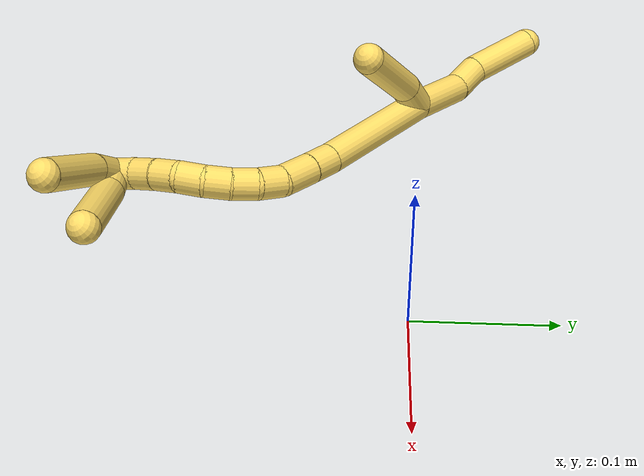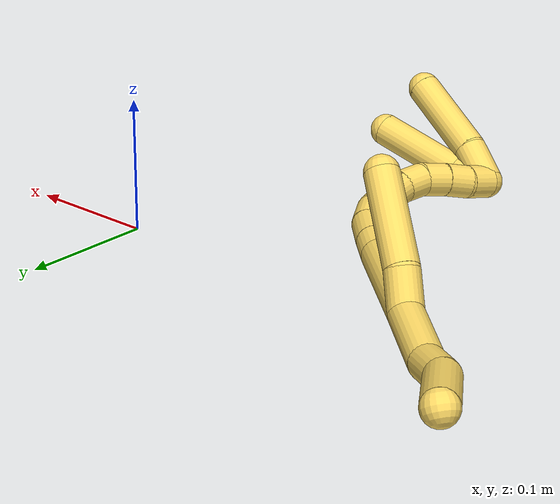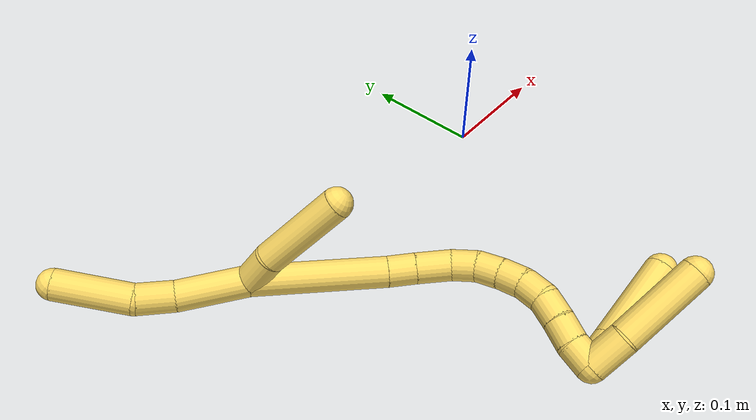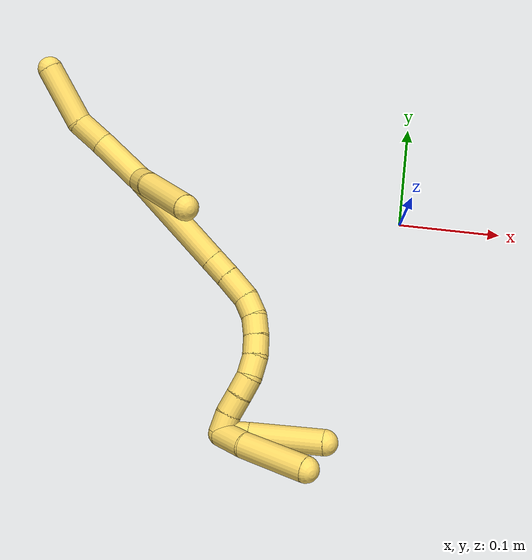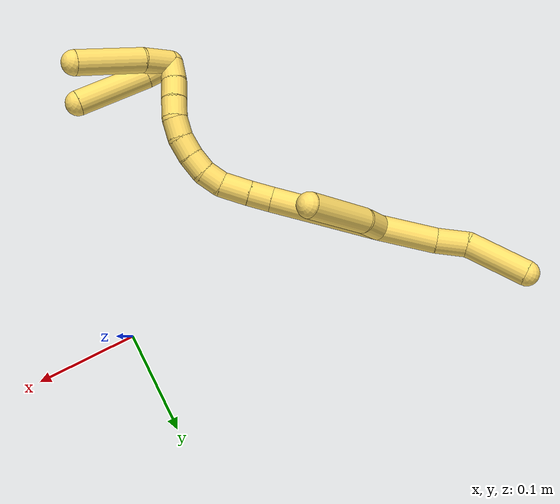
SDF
<sdf version="1.7">
 <world name="default">
  <model name="5">
   <static>0</static>
   <link name="5">
    <collision name="collision-cylinder-e_1_2_8">
     <pose>-0.016567 0.012015 -0.020197 -2.60494 -0.614045 1.71275</pose>
     <geometry><cylinder><radius>0.0125</radius><length>0.057506</length></cylinder></geometry>
     <surface>
      <friction><ode><mu>1.16</mu><mu2>1.16</mu2><slip1>0</slip1><slip2>0</slip2></ode></friction>
      <contact><ode><kp>1e+06</kp><kd>1</kd><max_vel>0</max_vel><min_depth>0.001</min_depth></ode></contact>
     </surface>
    </collision>
    <visual name="visual-cylinder-e_1_2_8">
     <pose>-0.016567 0.012015 -0.020197 -2.60494 -0.614045 1.71275</pose>
     <geometry><cylinder><radius>0.0125</radius><length>0.057506</length></cylinder></geometry>
     <material><ambient>1 0.858824 0.4 1</ambient></material>
    </visual>
    <collision name="collision-cylinder-e_2_8_9">
     <pose>-0.044888 0.030881 -0.04781 -2.3958 -0.861134 1.73061</pose>
     <geometry><cylinder><radius>0.0125</radius><length>0.03099</length></cylinder></geometry>
     <surface>
      <friction><ode><mu>1.16</mu><mu2>1.16</mu2><slip1>0</slip1><slip2>0</slip2></ode></friction>
      <contact><ode><kp>1e+06</kp><kd>1</kd><max_vel>0</max_vel><min_depth>0.001</min_depth></ode></contact>
     </surface>
    </collision>
    <visual name="visual-cylinder-e_2_8_9">
     <pose>-0.044888 0.030881 -0.04781 -2.3958 -0.861134 1.73061</pose>
     <geometry><cylinder><radius>0.0125</radius><length>0.03099</length></cylinder></geometry>
     <material><ambient>1 0.858824 0.4 1</ambient></material>
    </visual>
    <collision name="collision-cylinder-e_3_9_6">
     <pose>-0.073691 0.059552 -0.068601 -2.12068 -0.587639 0.99082</pose>
     <geometry><cylinder><radius>0.0125</radius><length>0.061504</length></cylinder></geometry>
     <surface>
      <friction><ode><mu>1.16</mu><mu2>1.16</mu2><slip1>0</slip1><slip2>0</slip2></ode></friction>
      <contact><ode><kp>1e+06</kp><kd>1</kd><max_vel>0</max_vel><min_depth>0.001</min_depth></ode></contact>
     </surface>
    </collision>
    <visual name="visual-cylinder-e_3_9_6">
     <pose>-0.073691 0.059552 -0.068601 -2.12068 -0.587639 0.99082</pose>
     <geometry><cylinder><radius>0.0125</radius><length>0.061504</length></cylinder></geometry>
     <material><ambient>1 0.858824 0.4 1</ambient></material>
    </visual>
    <collision name="collision-cylinder-e_1_2_10">
     <pose>-0.000967 -0.000499 0.014657 0.034026 -0.065867 -0.001121</pose>
     <geometry><cylinder><radius>0.0125</radius><length>0.029395</length></cylinder></geometry>
     <surface>
      <friction><ode><mu>1.16</mu><mu2>1.16</mu2><slip1>0</slip1><slip2>0</slip2></ode></friction>
      <contact><ode><kp>1e+06</kp><kd>1</kd><max_vel>0</max_vel><min_depth>0.001</min_depth></ode></contact>
     </surface>
    </collision>
    <visual name="visual-cylinder-e_1_2_10">
     <pose>-0.000967 -0.000499 0.014657 0.034026 -0.065867 -0.001121</pose>
     <geometry><cylinder><radius>0.0125</radius><length>0.029395</length></cylinder></geometry>
     <material><ambient>1 0.858824 0.4 1</ambient></material>
    </visual>
    <collision name="collision-cylinder-e_2_10_5">
     <pose>0.003064 -0.004503 0.064085 0.100469 0.142063 0.007154</pose>
     <geometry><cylinder><radius>0.0125</radius><length>0.070605</length></cylinder></geometry>
     <surface>
      <friction><ode><mu>1.16</mu><mu2>1.16</mu2><slip1>0</slip1><slip2>0</slip2></ode></friction>
      <contact><ode><kp>1e+06</kp><kd>1</kd><max_vel>0</max_vel><min_depth>0.001</min_depth></ode></contact>
     </surface>
    </collision>
    <visual name="visual-cylinder-e_2_10_5">
     <pose>0.003064 -0.004503 0.064085 0.100469 0.142063 0.007154</pose>
     <geometry><cylinder><radius>0.0125</radius><length>0.070605</length></cylinder></geometry>
     <material><ambient>1 0.858824 0.4 1</ambient></material>
    </visual>
    <collision name="collision-cylinder-e_1_2_11">
     <pose>0.03432 -0.027608 0.03109 0.726145 0.69005 0.271405</pose>
     <geometry><cylinder><radius>0.0125</radius><length>0.107828</length></cylinder></geometry>
     <surface>
      <friction><ode><mu>1.16</mu><mu2>1.16</mu2><slip1>0</slip1><slip2>0</slip2></ode></friction>
      <contact><ode><kp>1e+06</kp><kd>1</kd><max_vel>0</max_vel><min_depth>0.001</min_depth></ode></contact>
     </surface>
    </collision>
    <visual name="visual-cylinder-e_1_2_11">
     <pose>0.03432 -0.027608 0.03109 0.726145 0.69005 0.271405</pose>
     <geometry><cylinder><radius>0.0125</radius><length>0.107828</length></cylinder></geometry>
     <material><ambient>1 0.858824 0.4 1</ambient></material>
    </visual>
    <collision name="collision-cylinder-e_2_11_12">
     <pose>0.07523 -0.060714 0.069472 0.646093 0.625126 0.21553</pose>
     <geometry><cylinder><radius>0.0125</radius><length>0.022522</length></cylinder></geometry>
     <surface>
      <friction><ode><mu>1.16</mu><mu2>1.16</mu2><slip1>0</slip1><slip2>0</slip2></ode></friction>
      <contact><ode><kp>1e+06</kp><kd>1</kd><max_vel>0</max_vel><min_depth>0.001</min_depth></ode></contact>
     </surface>
    </collision>
    <visual name="visual-cylinder-e_2_11_12">
     <pose>0.07523 -0.060714 0.069472 0.646093 0.625126 0.21553</pose>
     <geometry><cylinder><radius>0.0125</radius><length>0.022522</length></cylinder></geometry>
     <material><ambient>1 0.858824 0.4 1</ambient></material>
    </visual>
    <collision name="collision-cylinder-e_3_12_13">
     <pose>0.089965 -0.073678 0.086071 0.676009 0.598917 0.216196</pose>
     <geometry><cylinder><radius>0.0125</radius><length>0.028896</length></cylinder></geometry>
     <surface>
      <friction><ode><mu>1.16</mu><mu2>1.16</mu2><slip1>0</slip1><slip2>0</slip2></ode></friction>
      <contact><ode><kp>1e+06</kp><kd>1</kd><max_vel>0</max_vel><min_depth>0.001</min_depth></ode></contact>
     </surface>
    </collision>
    <visual name="visual-cylinder-e_3_12_13">
     <pose>0.089965 -0.073678 0.086071 0.676009 0.598917 0.216196</pose>
     <geometry><cylinder><radius>0.0125</radius><length>0.028896</length></cylinder></geometry>
     <material><ambient>1 0.858824 0.4 1</ambient></material>
    </visual>
    <collision name="collision-cylinder-e_4_13_14">
     <pose>0.101152 -0.088073 0.102411 0.77807 0.298909 0.123295</pose>
     <geometry><cylinder><radius>0.0125</radius><length>0.020659</length></cylinder></geometry>
     <surface>
      <friction><ode><mu>1.16</mu><mu2>1.16</mu2><slip1>0</slip1><slip2>0</slip2></ode></friction>
      <contact><ode><kp>1e+06</kp><kd>1</kd><max_vel>0</max_vel><min_depth>0.001</min_depth></ode></contact>
     </surface>
    </collision>
    <visual name="visual-cylinder-e_4_13_14">
     <pose>0.101152 -0.088073 0.102411 0.77807 0.298909 0.123295</pose>
     <geometry><cylinder><radius>0.0125</radius><length>0.020659</length></cylinder></geometry>
     <material><ambient>1 0.858824 0.4 1</ambient></material>
    </visual>
    <collision name="collision-cylinder-e_5_14_15">
     <pose>0.105074 -0.103369 0.114863 0.995938 0.088084 0.04791</pose>
     <geometry><cylinder><radius>0.0125</radius><length>0.020016</length></cylinder></geometry>
     <surface>
      <friction><ode><mu>1.16</mu><mu2>1.16</mu2><slip1>0</slip1><slip2>0</slip2></ode></friction>
      <contact><ode><kp>1e+06</kp><kd>1</kd><max_vel>0</max_vel><min_depth>0.001</min_depth></ode></contact>
     </surface>
    </collision>
    <visual name="visual-cylinder-e_5_14_15">
     <pose>0.105074 -0.103369 0.114863 0.995938 0.088084 0.04791</pose>
     <geometry><cylinder><radius>0.0125</radius><length>0.020016</length></cylinder></geometry>
     <material><ambient>1 0.858824 0.4 1</ambient></material>
    </visual>
    <collision name="collision-cylinder-e_6_15_16">
     <pose>0.105455 -0.120445 0.125175 1.05906 -0.049992 -0.029264</pose>
     <geometry><cylinder><radius>0.0125</radius><length>0.020003</length></cylinder></geometry>
     <surface>
      <friction><ode><mu>1.16</mu><mu2>1.16</mu2><slip1>0</slip1><slip2>0</slip2></ode></friction>
      <contact><ode><kp>1e+06</kp><kd>1</kd><max_vel>0</max_vel><min_depth>0.001</min_depth></ode></contact>
     </surface>
    </collision>
    <visual name="visual-cylinder-e_6_15_16">
     <pose>0.105455 -0.120445 0.125175 1.05906 -0.049992 -0.029264</pose>
     <geometry><cylinder><radius>0.0125</radius><length>0.020003</length></cylinder></geometry>
     <material><ambient>1 0.858824 0.4 1</ambient></material>
    </visual>
    <collision name="collision-cylinder-e_7_16_17">
     <pose>0.102908 -0.138471 0.133138 1.25228 -0.20568 -0.149002</pose>
     <geometry><cylinder><radius>0.0125</radius><length>0.020042</length></cylinder></geometry>
     <surface>
      <friction><ode><mu>1.16</mu><mu2>1.16</mu2><slip1>0</slip1><slip2>0</slip2></ode></friction>
      <contact><ode><kp>1e+06</kp><kd>1</kd><max_vel>0</max_vel><min_depth>0.001</min_depth></ode></contact>
     </surface>
    </collision>
    <visual name="visual-cylinder-e_7_16_17">
     <pose>0.102908 -0.138471 0.133138 1.25228 -0.20568 -0.149002</pose>
     <geometry><cylinder><radius>0.0125</radius><length>0.020042</length></cylinder></geometry>
     <material><ambient>1 0.858824 0.4 1</ambient></material>
    </visual>
    <collision name="collision-cylinder-e_8_17_18">
     <pose>0.098221 -0.157447 0.136144 1.57762 -0.266837 -0.268643</pose>
     <geometry><cylinder><radius>0.0125</radius><length>0.020028</length></cylinder></geometry>
     <surface>
      <friction><ode><mu>1.16</mu><mu2>1.16</mu2><slip1>0</slip1><slip2>0</slip2></ode></friction>
      <contact><ode><kp>1e+06</kp><kd>1</kd><max_vel>0</max_vel><min_depth>0.001</min_depth></ode></contact>
     </surface>
    </collision>
    <visual name="visual-cylinder-e_8_17_18">
     <pose>0.098221 -0.157447 0.136144 1.57762 -0.266837 -0.268643</pose>
     <geometry><cylinder><radius>0.0125</radius><length>0.020028</length></cylinder></geometry>
     <material><ambient>1 0.858824 0.4 1</ambient></material>
    </visual>
    <collision name="collision-cylinder-e_9_18_19">
     <pose>0.093189 -0.176782 0.135251 1.65614 -0.241529 -0.262836</pose>
     <geometry><cylinder><radius>0.0125</radius><length>0.020002</length></cylinder></geometry>
     <surface>
      <friction><ode><mu>1.16</mu><mu2>1.16</mu2><slip1>0</slip1><slip2>0</slip2></ode></friction>
      <contact><ode><kp>1e+06</kp><kd>1</kd><max_vel>0</max_vel><min_depth>0.001</min_depth></ode></contact>
     </surface>
    </collision>
    <visual name="visual-cylinder-e_9_18_19">
     <pose>0.093189 -0.176782 0.135251 1.65614 -0.241529 -0.262836</pose>
     <geometry><cylinder><radius>0.0125</radius><length>0.020002</length></cylinder></geometry>
     <material><ambient>1 0.858824 0.4 1</ambient></material>
    </visual>
    <collision name="collision-cylinder-e_10_19_1">
     <pose>0.08954 -0.196361 0.135039 1.50866 -0.125905 -0.118334</pose>
     <geometry><cylinder><radius>0.0125</radius><length>0.020004</length></cylinder></geometry>
     <surface>
      <friction><ode><mu>1.16</mu><mu2>1.16</mu2><slip1>0</slip1><slip2>0</slip2></ode></friction>
      <contact><ode><kp>1e+06</kp><kd>1</kd><max_vel>0</max_vel><min_depth>0.001</min_depth></ode></contact>
     </surface>
    </collision>
    <visual name="visual-cylinder-e_10_19_1">
     <pose>0.08954 -0.196361 0.135039 1.50866 -0.125905 -0.118334</pose>
     <geometry><cylinder><radius>0.0125</radius><length>0.020004</length></cylinder></geometry>
     <material><ambient>1 0.858824 0.4 1</ambient></material>
    </visual>
    <collision name="collision-cylinder-e_1_1_20">
     <pose>0.09933 -0.203419 0.142742 -0.381958 0.965857 -0.202056</pose>
     <geometry><cylinder><radius>0.0125</radius><length>0.026857</length></cylinder></geometry>
     <surface>
      <friction><ode><mu>1.16</mu><mu2>1.16</mu2><slip1>0</slip1><slip2>0</slip2></ode></friction>
      <contact><ode><kp>1e+06</kp><kd>1</kd><max_vel>0</max_vel><min_depth>0.001</min_depth></ode></contact>
     </surface>
    </collision>
    <visual name="visual-cylinder-e_1_1_20">
     <pose>0.09933 -0.203419 0.142742 -0.381958 0.965857 -0.202056</pose>
     <geometry><cylinder><radius>0.0125</radius><length>0.026857</length></cylinder></geometry>
     <material><ambient>1 0.858824 0.4 1</ambient></material>
    </visual>
    <collision name="collision-cylinder-e_2_20_4">
     <pose>0.135444 -0.19181 0.174973 -0.335296 0.755248 -0.134058</pose>
     <geometry><cylinder><radius>0.0125</radius><length>0.073143</length></cylinder></geometry>
     <surface>
      <friction><ode><mu>1.16</mu><mu2>1.16</mu2><slip1>0</slip1><slip2>0</slip2></ode></friction>
      <contact><ode><kp>1e+06</kp><kd>1</kd><max_vel>0</max_vel><min_depth>0.001</min_depth></ode></contact>
     </surface>
    </collision>
    <visual name="visual-cylinder-e_2_20_4">
     <pose>0.135444 -0.19181 0.174973 -0.335296 0.755248 -0.134058</pose>
     <geometry><cylinder><radius>0.0125</radius><length>0.073143</length></cylinder></geometry>
     <material><ambient>1 0.858824 0.4 1</ambient></material>
    </visual>
    <collision name="collision-cylinder-e_1_1_21">
     <pose>0.092991 -0.205811 0.150481 -0.030629 0.307254 -0.004743</pose>
     <geometry><cylinder><radius>0.0125</radius><length>0.031122</length></cylinder></geometry>
     <surface>
      <friction><ode><mu>1.16</mu><mu2>1.16</mu2><slip1>0</slip1><slip2>0</slip2></ode></friction>
      <contact><ode><kp>1e+06</kp><kd>1</kd><max_vel>0</max_vel><min_depth>0.001</min_depth></ode></contact>
     </surface>
    </collision>
    <visual name="visual-cylinder-e_1_1_21">
     <pose>0.092991 -0.205811 0.150481 -0.030629 0.307254 -0.004743</pose>
     <geometry><cylinder><radius>0.0125</radius><length>0.031122</length></cylinder></geometry>
     <material><ambient>1 0.858824 0.4 1</ambient></material>
    </visual>
    <collision name="collision-cylinder-e_2_21_3">
     <pose>0.113517 -0.203266 0.195825 -0.068387 0.477292 -0.016643</pose>
     <geometry><cylinder><radius>0.0125</radius><length>0.068878</length></cylinder></geometry>
     <surface>
      <friction><ode><mu>1.16</mu><mu2>1.16</mu2><slip1>0</slip1><slip2>0</slip2></ode></friction>
      <contact><ode><kp>1e+06</kp><kd>1</kd><max_vel>0</max_vel><min_depth>0.001</min_depth></ode></contact>
     </surface>
    </collision>
    <visual name="visual-cylinder-e_2_21_3">
     <pose>0.113517 -0.203266 0.195825 -0.068387 0.477292 -0.016643</pose>
     <geometry><cylinder><radius>0.0125</radius><length>0.068878</length></cylinder></geometry>
     <material><ambient>1 0.858824 0.4 1</ambient></material>
    </visual>
    <collision name="collision-sphere-3">
     <pose>0.129338 -0.201176 0.226343 0 -0 0</pose>
     <geometry><sphere><radius>0.0125</radius></sphere></geometry>
     <surface>
      <friction><ode><mu>1.16</mu><mu2>1.16</mu2><slip1>0</slip1><slip2>0</slip2></ode></friction>
      <contact><ode><kp>1e+06</kp><kd>1</kd><max_vel>0</max_vel><min_depth>0.001</min_depth></ode></contact>
     </surface>
    </collision>
    <visual name="visual-sphere-3">
     <pose>0.129338 -0.201176 0.226343 0 -0 0</pose>
     <geometry><sphere><radius>0.0125</radius></sphere></geometry>
     <material><ambient>1 0.858824 0.4 1</ambient></material>
    </visual>
    <collision name="collision-sphere-21">
     <pose>0.097697 -0.205357 0.165306 0 -0 0</pose>
     <geometry><sphere><radius>0.0125</radius></sphere></geometry>
     <surface>
      <friction><ode><mu>1.16</mu><mu2>1.16</mu2><slip1>0</slip1><slip2>0</slip2></ode></friction>
      <contact><ode><kp>1e+06</kp><kd>1</kd><max_vel>0</max_vel><min_depth>0.001</min_depth></ode></contact>
     </surface>
    </collision>
    <visual name="visual-sphere-21">
     <pose>0.097697 -0.205357 0.165306 0 -0 0</pose>
     <geometry><sphere><radius>0.0125</radius></sphere></geometry>
     <material><ambient>1 0.858824 0.4 1</ambient></material>
    </visual>
    <collision name="collision-sphere-4">
     <pose>0.160512 -0.183048 0.200118 0 -0 0</pose>
     <geometry><sphere><radius>0.0125</radius></sphere></geometry>
     <surface>
      <friction><ode><mu>1.16</mu><mu2>1.16</mu2><slip1>0</slip1><slip2>0</slip2></ode></friction>
      <contact><ode><kp>1e+06</kp><kd>1</kd><max_vel>0</max_vel><min_depth>0.001</min_depth></ode></contact>
     </surface>
    </collision>
    <visual name="visual-sphere-4">
     <pose>0.160512 -0.183048 0.200118 0 -0 0</pose>
     <geometry><sphere><radius>0.0125</radius></sphere></geometry>
     <material><ambient>1 0.858824 0.4 1</ambient></material>
    </visual>
    <collision name="collision-sphere-20">
     <pose>0.110375 -0.200572 0.149828 0 -0 0</pose>
     <geometry><sphere><radius>0.0125</radius></sphere></geometry>
     <surface>
      <friction><ode><mu>1.16</mu><mu2>1.16</mu2><slip1>0</slip1><slip2>0</slip2></ode></friction>
      <contact><ode><kp>1e+06</kp><kd>1</kd><max_vel>0</max_vel><min_depth>0.001</min_depth></ode></contact>
     </surface>
    </collision>
    <visual name="visual-sphere-20">
     <pose>0.110375 -0.200572 0.149828 0 -0 0</pose>
     <geometry><sphere><radius>0.0125</radius></sphere></geometry>
     <material><ambient>1 0.858824 0.4 1</ambient></material>
    </visual>
    <collision name="collision-sphere-5">
     <pose>0.008062 -0.008008 0.098856 0 -0 0</pose>
     <geometry><sphere><radius>0.0125</radius></sphere></geometry>
     <surface>
      <friction><ode><mu>1.16</mu><mu2>1.16</mu2><slip1>0</slip1><slip2>0</slip2></ode></friction>
      <contact><ode><kp>1e+06</kp><kd>1</kd><max_vel>0</max_vel><min_depth>0.001</min_depth></ode></contact>
     </surface>
    </collision>
    <visual name="visual-sphere-5">
     <pose>0.008062 -0.008008 0.098856 0 -0 0</pose>
     <geometry><sphere><radius>0.0125</radius></sphere></geometry>
     <material><ambient>1 0.858824 0.4 1</ambient></material>
    </visual>
    <collision name="collision-sphere-10">
     <pose>-0.001935 -0.000998 0.029315 0 -0 0</pose>
     <geometry><sphere><radius>0.0125</radius></sphere></geometry>
     <surface>
      <friction><ode><mu>1.16</mu><mu2>1.16</mu2><slip1>0</slip1><slip2>0</slip2></ode></friction>
      <contact><ode><kp>1e+06</kp><kd>1</kd><max_vel>0</max_vel><min_depth>0.001</min_depth></ode></contact>
     </surface>
    </collision>
    <visual name="visual-sphere-10">
     <pose>-0.001935 -0.000998 0.029315 0 -0 0</pose>
     <geometry><sphere><radius>0.0125</radius></sphere></geometry>
     <material><ambient>1 0.858824 0.4 1</ambient></material>
    </visual>
    <collision name="collision-sphere-6">
     <pose>-0.09074 0.081373 -0.081976 0 -0 0</pose>
     <geometry><sphere><radius>0.0125</radius></sphere></geometry>
     <surface>
      <friction><ode><mu>1.16</mu><mu2>1.16</mu2><slip1>0</slip1><slip2>0</slip2></ode></friction>
      <contact><ode><kp>1e+06</kp><kd>1</kd><max_vel>0</max_vel><min_depth>0.001</min_depth></ode></contact>
     </surface>
    </collision>
    <visual name="visual-sphere-6">
     <pose>-0.09074 0.081373 -0.081976 0 -0 0</pose>
     <geometry><sphere><radius>0.0125</radius></sphere></geometry>
     <material><ambient>1 0.858824 0.4 1</ambient></material>
    </visual>
    <collision name="collision-sphere-9">
     <pose>-0.056642 0.037732 -0.055226 0 -0 0</pose>
     <geometry><sphere><radius>0.0125</radius></sphere></geometry>
     <surface>
      <friction><ode><mu>1.16</mu><mu2>1.16</mu2><slip1>0</slip1><slip2>0</slip2></ode></friction>
      <contact><ode><kp>1e+06</kp><kd>1</kd><max_vel>0</max_vel><min_depth>0.001</min_depth></ode></contact>
     </surface>
    </collision>
    <visual name="visual-sphere-9">
     <pose>-0.056642 0.037732 -0.055226 0 -0 0</pose>
     <geometry><sphere><radius>0.0125</radius></sphere></geometry>
     <material><ambient>1 0.858824 0.4 1</ambient></material>
    </visual>
    <collision name="collision-sphere-2">
     <geometry><sphere><radius>0.0125</radius></sphere></geometry>
     <surface>
      <friction><ode><mu>1.16</mu><mu2>1.16</mu2><slip1>0</slip1><slip2>0</slip2></ode></friction>
      <contact><ode><kp>1e+06</kp><kd>1</kd><max_vel>0</max_vel><min_depth>0.001</min_depth></ode></contact>
     </surface>
    </collision>
    <visual name="visual-sphere-2">
     <geometry><sphere><radius>0.0125</radius></sphere></geometry>
     <material><ambient>1 0.858824 0.4 1</ambient></material>
    </visual>
    <collision name="collision-sphere-19">
     <pose>0.090796 -0.186457 0.134423 0 -0 0</pose>
     <geometry><sphere><radius>0.0125</radius></sphere></geometry>
     <surface>
      <friction><ode><mu>1.16</mu><mu2>1.16</mu2><slip1>0</slip1><slip2>0</slip2></ode></friction>
      <contact><ode><kp>1e+06</kp><kd>1</kd><max_vel>0</max_vel><min_depth>0.001</min_depth></ode></contact>
     </surface>
    </collision>
    <visual name="visual-sphere-19">
     <pose>0.090796 -0.186457 0.134423 0 -0 0</pose>
     <geometry><sphere><radius>0.0125</radius></sphere></geometry>
     <material><ambient>1 0.858824 0.4 1</ambient></material>
    </visual>
    <collision name="collision-sphere-8">
     <pose>-0.033134 0.02403 -0.040394 0 -0 0</pose>
     <geometry><sphere><radius>0.0125</radius></sphere></geometry>
     <surface>
      <friction><ode><mu>1.16</mu><mu2>1.16</mu2><slip1>0</slip1><slip2>0</slip2></ode></friction>
      <contact><ode><kp>1e+06</kp><kd>1</kd><max_vel>0</max_vel><min_depth>0.001</min_depth></ode></contact>
     </surface>
    </collision>
    <visual name="visual-sphere-8">
     <pose>-0.033134 0.02403 -0.040394 0 -0 0</pose>
     <geometry><sphere><radius>0.0125</radius></sphere></geometry>
     <material><ambient>1 0.858824 0.4 1</ambient></material>
    </visual>
    <collision name="collision-sphere-11">
     <pose>0.068641 -0.055217 0.062181 0 -0 0</pose>
     <geometry><sphere><radius>0.0125</radius></sphere></geometry>
     <surface>
      <friction><ode><mu>1.16</mu><mu2>1.16</mu2><slip1>0</slip1><slip2>0</slip2></ode></friction>
      <contact><ode><kp>1e+06</kp><kd>1</kd><max_vel>0</max_vel><min_depth>0.001</min_depth></ode></contact>
     </surface>
    </collision>
    <visual name="visual-sphere-11">
     <pose>0.068641 -0.055217 0.062181 0 -0 0</pose>
     <geometry><sphere><radius>0.0125</radius></sphere></geometry>
     <material><ambient>1 0.858824 0.4 1</ambient></material>
    </visual>
    <collision name="collision-sphere-12">
     <pose>0.08182 -0.066212 0.076762 0 -0 0</pose>
     <geometry><sphere><radius>0.0125</radius></sphere></geometry>
     <surface>
      <friction><ode><mu>1.16</mu><mu2>1.16</mu2><slip1>0</slip1><slip2>0</slip2></ode></friction>
      <contact><ode><kp>1e+06</kp><kd>1</kd><max_vel>0</max_vel><min_depth>0.001</min_depth></ode></contact>
     </surface>
    </collision>
    <visual name="visual-sphere-12">
     <pose>0.08182 -0.066212 0.076762 0 -0 0</pose>
     <geometry><sphere><radius>0.0125</radius></sphere></geometry>
     <material><ambient>1 0.858824 0.4 1</ambient></material>
    </visual>
    <collision name="collision-sphere-13">
     <pose>0.09811 -0.081145 0.09538 0 -0 0</pose>
     <geometry><sphere><radius>0.0125</radius></sphere></geometry>
     <surface>
      <friction><ode><mu>1.16</mu><mu2>1.16</mu2><slip1>0</slip1><slip2>0</slip2></ode></friction>
      <contact><ode><kp>1e+06</kp><kd>1</kd><max_vel>0</max_vel><min_depth>0.001</min_depth></ode></contact>
     </surface>
    </collision>
    <visual name="visual-sphere-13">
     <pose>0.09811 -0.081145 0.09538 0 -0 0</pose>
     <geometry><sphere><radius>0.0125</radius></sphere></geometry>
     <material><ambient>1 0.858824 0.4 1</ambient></material>
    </visual>
    <collision name="collision-sphere-14">
     <pose>0.104194 -0.095002 0.109442 0 -0 0</pose>
     <geometry><sphere><radius>0.0125</radius></sphere></geometry>
     <surface>
      <friction><ode><mu>1.16</mu><mu2>1.16</mu2><slip1>0</slip1><slip2>0</slip2></ode></friction>
      <contact><ode><kp>1e+06</kp><kd>1</kd><max_vel>0</max_vel><min_depth>0.001</min_depth></ode></contact>
     </surface>
    </collision>
    <visual name="visual-sphere-14">
     <pose>0.104194 -0.095002 0.109442 0 -0 0</pose>
     <geometry><sphere><radius>0.0125</radius></sphere></geometry>
     <material><ambient>1 0.858824 0.4 1</ambient></material>
    </visual>
    <collision name="collision-sphere-15">
     <pose>0.105954 -0.111736 0.120283 0 -0 0</pose>
     <geometry><sphere><radius>0.0125</radius></sphere></geometry>
     <surface>
      <friction><ode><mu>1.16</mu><mu2>1.16</mu2><slip1>0</slip1><slip2>0</slip2></ode></friction>
      <contact><ode><kp>1e+06</kp><kd>1</kd><max_vel>0</max_vel><min_depth>0.001</min_depth></ode></contact>
     </surface>
    </collision>
    <visual name="visual-sphere-15">
     <pose>0.105954 -0.111736 0.120283 0 -0 0</pose>
     <geometry><sphere><radius>0.0125</radius></sphere></geometry>
     <material><ambient>1 0.858824 0.4 1</ambient></material>
    </visual>
    <collision name="collision-sphere-16">
     <pose>0.104955 -0.129155 0.130066 0 -0 0</pose>
     <geometry><sphere><radius>0.0125</radius></sphere></geometry>
     <surface>
      <friction><ode><mu>1.16</mu><mu2>1.16</mu2><slip1>0</slip1><slip2>0</slip2></ode></friction>
      <contact><ode><kp>1e+06</kp><kd>1</kd><max_vel>0</max_vel><min_depth>0.001</min_depth></ode></contact>
     </surface>
    </collision>
    <visual name="visual-sphere-16">
     <pose>0.104955 -0.129155 0.130066 0 -0 0</pose>
     <geometry><sphere><radius>0.0125</radius></sphere></geometry>
     <material><ambient>1 0.858824 0.4 1</ambient></material>
    </visual>
    <collision name="collision-sphere-17">
     <pose>0.100862 -0.147788 0.13621 0 -0 0</pose>
     <geometry><sphere><radius>0.0125</radius></sphere></geometry>
     <surface>
      <friction><ode><mu>1.16</mu><mu2>1.16</mu2><slip1>0</slip1><slip2>0</slip2></ode></friction>
      <contact><ode><kp>1e+06</kp><kd>1</kd><max_vel>0</max_vel><min_depth>0.001</min_depth></ode></contact>
     </surface>
    </collision>
    <visual name="visual-sphere-17">
     <pose>0.100862 -0.147788 0.13621 0 -0 0</pose>
     <geometry><sphere><radius>0.0125</radius></sphere></geometry>
     <material><ambient>1 0.858824 0.4 1</ambient></material>
    </visual>
    <collision name="collision-sphere-18">
     <pose>0.095581 -0.167106 0.136078 0 -0 0</pose>
     <geometry><sphere><radius>0.0125</radius></sphere></geometry>
     <surface>
      <friction><ode><mu>1.16</mu><mu2>1.16</mu2><slip1>0</slip1><slip2>0</slip2></ode></friction>
      <contact><ode><kp>1e+06</kp><kd>1</kd><max_vel>0</max_vel><min_depth>0.001</min_depth></ode></contact>
     </surface>
    </collision>
    <visual name="visual-sphere-18">
     <pose>0.095581 -0.167106 0.136078 0 -0 0</pose>
     <geometry><sphere><radius>0.0125</radius></sphere></geometry>
     <material><ambient>1 0.858824 0.4 1</ambient></material>
    </visual>
    <collision name="collision-sphere-1">
     <pose>0.088284 -0.206265 0.135655 0 -0 0</pose>
     <geometry><sphere><radius>0.0125</radius></sphere></geometry>
     <surface>
      <friction><ode><mu>1.16</mu><mu2>1.16</mu2><slip1>0</slip1><slip2>0</slip2></ode></friction>
      <contact><ode><kp>1e+06</kp><kd>1</kd><max_vel>0</max_vel><min_depth>0.001</min_depth></ode></contact>
     </surface>
    </collision>
    <visual name="visual-sphere-1">
     <pose>0.088284 -0.206265 0.135655 0 -0 0</pose>
     <geometry><sphere><radius>0.0125</radius></sphere></geometry>
     <material><ambient>1 0.858824 0.4 1</ambient></material>
    </visual>
    <inertial>
     <pose>0.051441 -0.081446 0.077361 0 -0 0</pose>
     <mass>0.75</mass>
     <inertia>
      <ixx>0.000254</ixx>
      <ixy>0</ixy>
      <ixz>0</ixz>
      <iyy>0.000258</iyy>
      <iyz>0</iyz>
      <izz>-3.3e-05</izz>
     </inertia>
    </inertial>
   </link>
   <pose>-0.261169 0.013005 0.018573 0.381793 0.569294 0.036632</pose>
  </model>
 </world>
</sdf>
